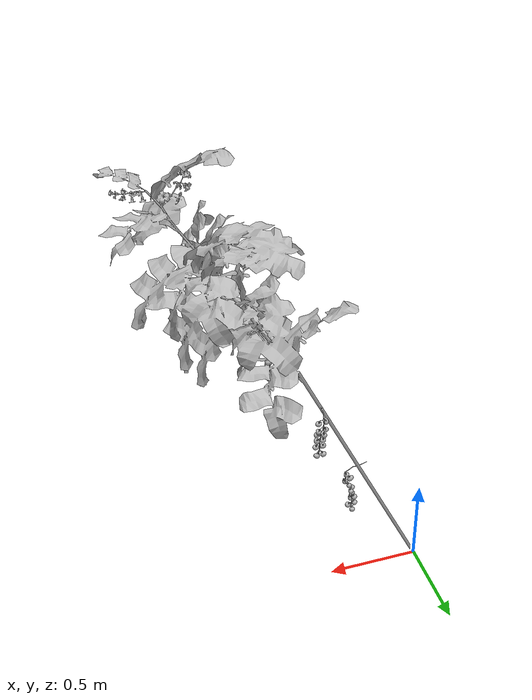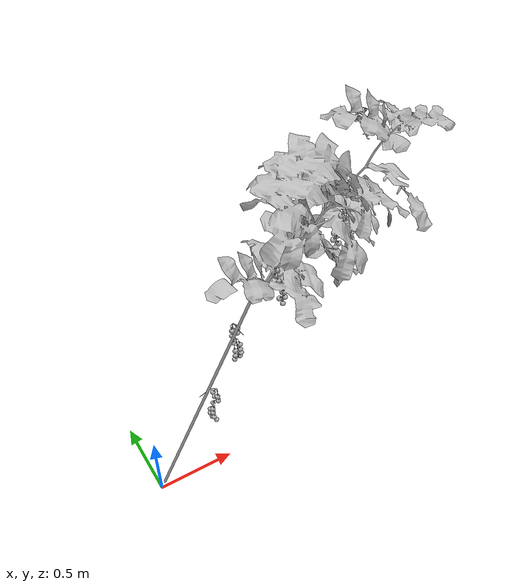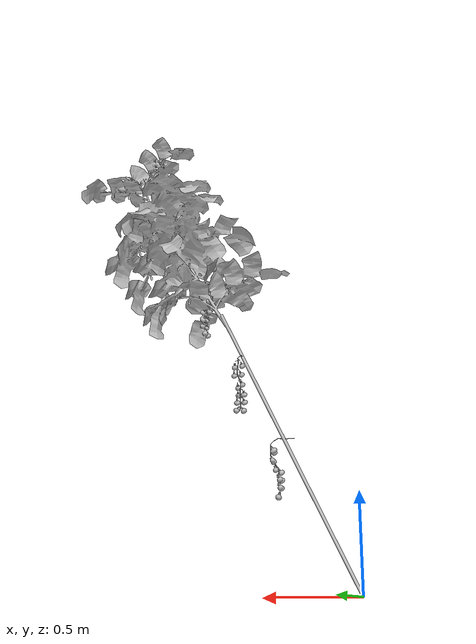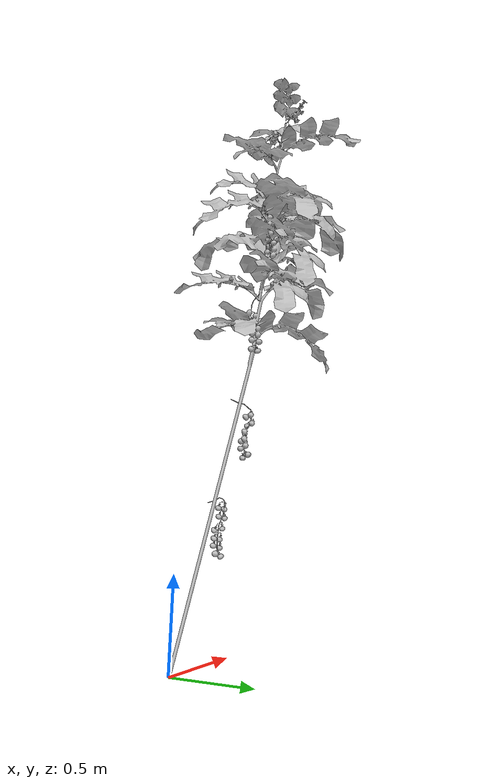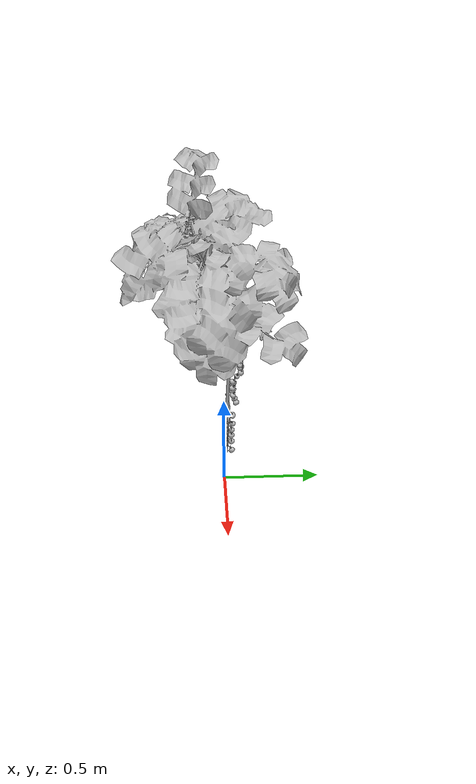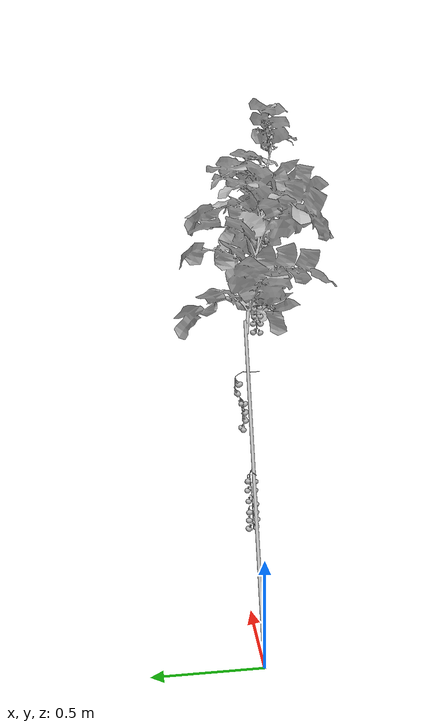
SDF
<?xml version="1.0"?>
<sdf version="1.6">
  <model name="tomato_vine_repo_v9">
    <static>true</static>
    <link name="link">
      <collision name="collision_trunk">
        <geometry><cylinder><radius>0.014</radius><length>1.629</length></cylinder></geometry>
        <pose>0.3557 0 0.7326 0 0.4520 0</pose>
      </collision>
      <visual name="plant">
        <geometry>
          <mesh>
            <uri>model://tomato_vine_repo_v9/meshes/tomato_vine_repo_v9.dae</uri>
          </mesh>
        </geometry>
      </visual>
    </link>
  </model>
</sdf>
